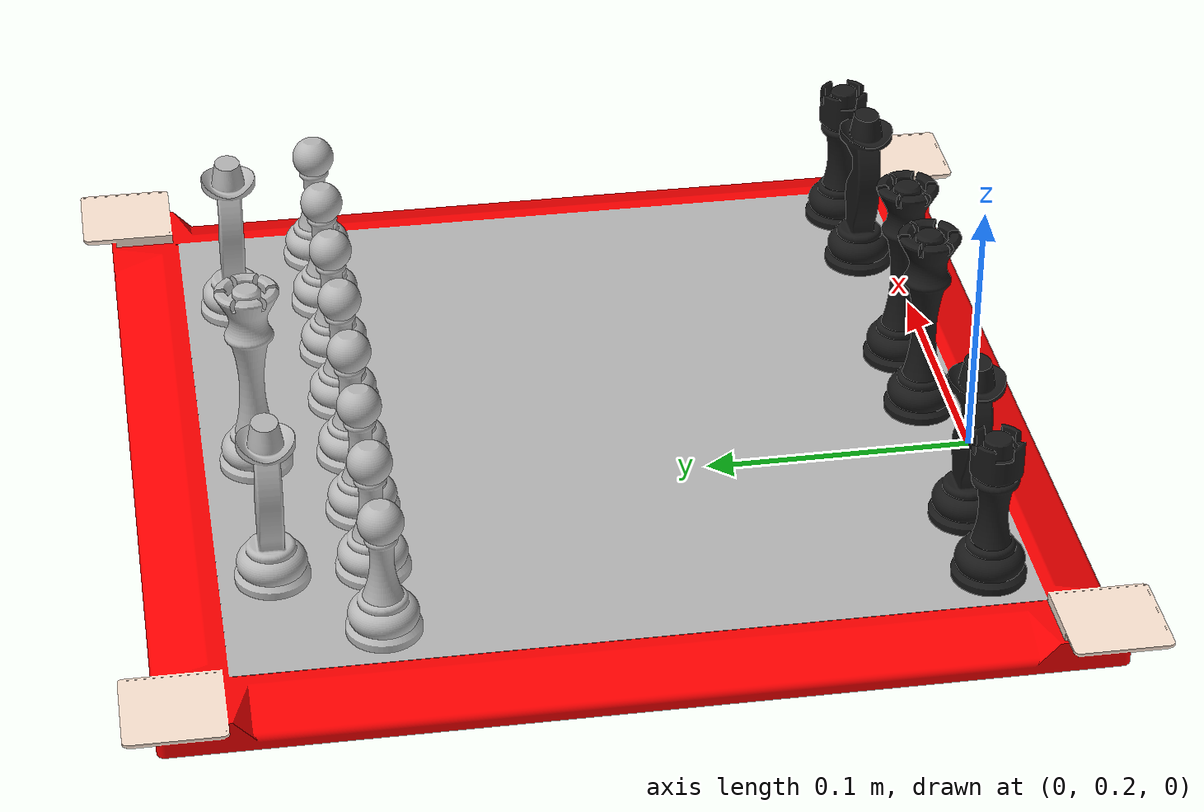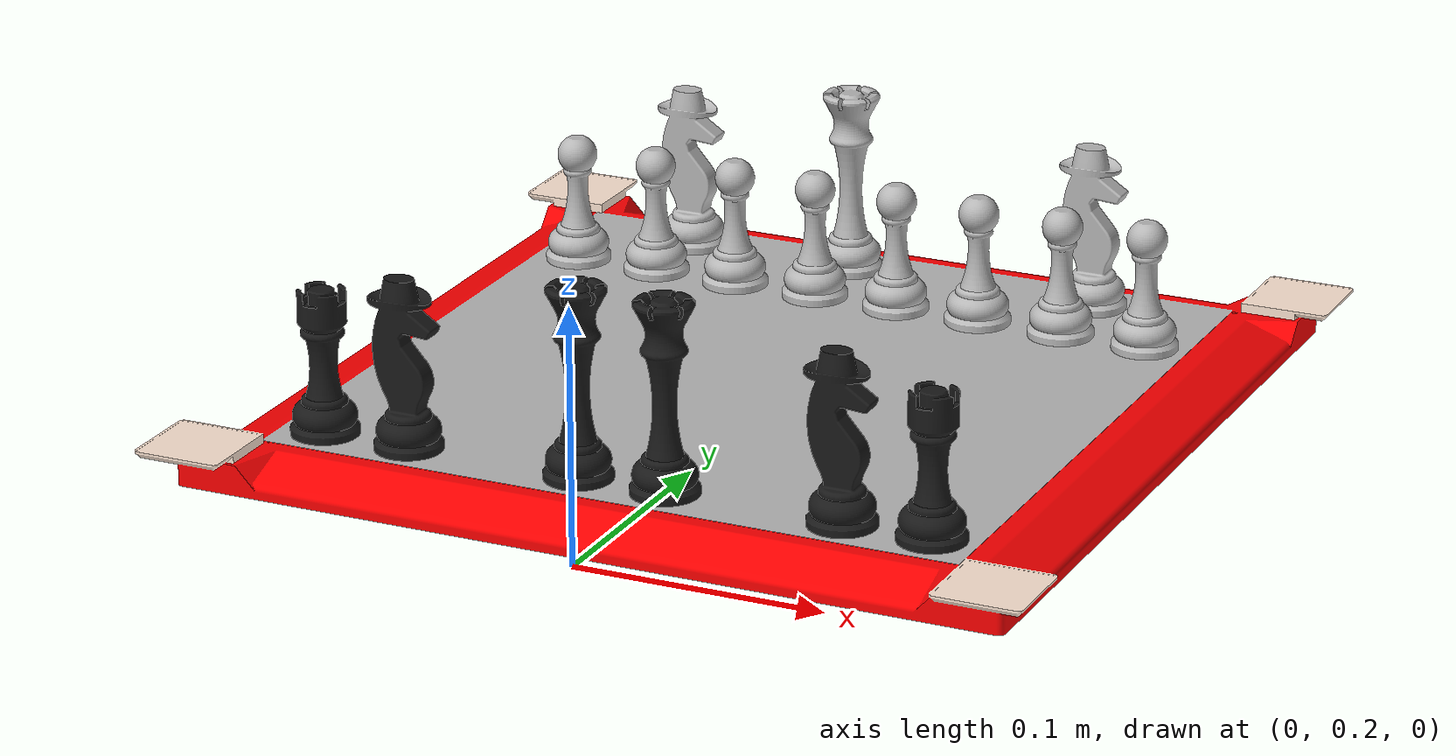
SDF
<sdf version="1.7">
 <world name="default">
  <gravity>0 0 -9.8</gravity>
  <magnetic_field>6e-06 2.3e-05 -4.2e-05</magnetic_field>
  <atmosphere type="adiabatic"/>
  <physics type="ode">
   <max_step_size>0.001</max_step_size>
   <real_time_factor>1</real_time_factor>
   <real_time_update_rate>1000</real_time_update_rate>
  </physics>
  <scene><ambient>0.4 0.4 0.4 1</ambient><background>0.7 0.7 0.7 1</background><shadows>1</shadows></scene>
  <audio><device>default</device></audio>
  <spherical_coordinates>
   <surface_model>EARTH_WGS84</surface_model>
   <latitude_deg>0</latitude_deg>
   <longitude_deg>0</longitude_deg>
   <elevation>0</elevation>
   <heading_deg>0</heading_deg>
  </spherical_coordinates>
  <model name="board">
   <static>1</static>
   <link name="link">
    <visual name="visual"><geometry><mesh><uri>model://board/meshes/board.dae</uri></mesh></geometry></visual>
    <collision name="collision">
     <geometry><mesh><uri>model://board/meshes/board.dae</uri></mesh></geometry>
    </collision>
   </link>
   <pose>-0.011355 0.342107 0.010873 0 -0 0</pose>
  </model>
  <light name="user_point_light_0" type="point">
   <pose>-0.050834 1.0999 1 0 -0 0</pose>
   <diffuse>0.5 0.5 0.5 1</diffuse>
   <specular>0.1 0.1 0.1 1</specular>
   <attenuation>
    <range>20</range>
    <constant>0.5</constant>
    <linear>0.01</linear>
    <quadratic>0.001</quadratic>
   </attenuation>
   <cast_shadows>0</cast_shadows>
   <direction>0 0 -1</direction>
   <spot><inner_angle>0</inner_angle><outer_angle>0</outer_angle><falloff>0</falloff></spot>
  </light>
  <model name="white_pawn_a2">
   <static>0</static>
   <link name="link">
    <inertial>
     <mass>0.05</mass>
     <inertia><ixx>1e-05</ixx><iyy>1e-05</iyy><izz>1e-05</izz><ixy>0</ixy><ixz>0</ixz><iyz>0</iyz></inertia>
    </inertial>
    <collision name="collision">
     <geometry><mesh><uri>model://white_pawn/meshes/white_pawn.dae</uri></mesh></geometry>
     <surface><friction><ode><mu>1</mu><mu2>1</mu2></ode></friction></surface>
    </collision>
    <visual name="visual">
     <geometry><mesh><uri>model://white_pawn/meshes/white_pawn.dae</uri></mesh></geometry>
    </visual>
   </link>
   <plugin name="ros2_objectpose_plugin" filename="libros2_objectpose_plugin.so">
    <ros><namespace>white_pawn_a2</namespace></ros>
   </plugin>
   <pose>0.131602 0.432392 0.024971 0.000155 -8.3e-05 1.2e-05</pose>
  </model>
  <model name="white_pawn_b2">
   <static>0</static>
   <link name="link">
    <inertial>
     <mass>0.05</mass>
     <inertia><ixx>1e-05</ixx><iyy>1e-05</iyy><izz>1e-05</izz><ixy>0</ixy><ixz>0</ixz><iyz>0</iyz></inertia>
    </inertial>
    <collision name="collision">
     <geometry><mesh><uri>model://white_pawn/meshes/white_pawn.dae</uri></mesh></geometry>
     <surface><friction><ode><mu>1</mu><mu2>1</mu2></ode></friction></surface>
    </collision>
    <visual name="visual">
     <geometry><mesh><uri>model://white_pawn/meshes/white_pawn.dae</uri></mesh></geometry>
    </visual>
   </link>
   <plugin name="ros2_objectpose_plugin" filename="libros2_objectpose_plugin.so">
    <ros><namespace>white_pawn_b2</namespace></ros>
   </plugin>
   <pose>0.096602 0.432392 0.02497 -0.000234 -0.000205 1.3e-05</pose>
  </model>
  <model name="white_pawn_c2">
   <static>0</static>
   <link name="link">
    <inertial>
     <mass>0.05</mass>
     <inertia><ixx>1e-05</ixx><iyy>1e-05</iyy><izz>1e-05</izz><ixy>0</ixy><ixz>0</ixz><iyz>0</iyz></inertia>
    </inertial>
    <collision name="collision">
     <geometry><mesh><uri>model://white_pawn/meshes/white_pawn.dae</uri></mesh></geometry>
     <surface><friction><ode><mu>1</mu><mu2>1</mu2></ode></friction></surface>
    </collision>
    <visual name="visual">
     <geometry><mesh><uri>model://white_pawn/meshes/white_pawn.dae</uri></mesh></geometry>
    </visual>
   </link>
   <plugin name="ros2_objectpose_plugin" filename="libros2_objectpose_plugin.so">
    <ros><namespace>white_pawn_c2</namespace></ros>
   </plugin>
   <pose>0.061602 0.432393 0.024972 8.9e-05 -5.4e-05 2.2e-05</pose>
  </model>
  <model name="white_pawn_d2">
   <static>0</static>
   <link name="link">
    <inertial>
     <mass>0.05</mass>
     <inertia><ixx>1e-05</ixx><iyy>1e-05</iyy><izz>1e-05</izz><ixy>0</ixy><ixz>0</ixz><iyz>0</iyz></inertia>
    </inertial>
    <collision name="collision">
     <geometry><mesh><uri>model://white_pawn/meshes/white_pawn.dae</uri></mesh></geometry>
     <surface><friction><ode><mu>1</mu><mu2>1</mu2></ode></friction></surface>
    </collision>
    <visual name="visual">
     <geometry><mesh><uri>model://white_pawn/meshes/white_pawn.dae</uri></mesh></geometry>
    </visual>
   </link>
   <plugin name="ros2_objectpose_plugin" filename="libros2_objectpose_plugin.so">
    <ros><namespace>white_pawn_d2</namespace></ros>
   </plugin>
   <pose>0.026602 0.432393 0.024971 0.000155 -8.3e-05 2e-05</pose>
  </model>
  <model name="white_pawn_e2">
   <static>0</static>
   <link name="link">
    <inertial>
     <mass>0.05</mass>
     <inertia><ixx>1e-05</ixx><iyy>1e-05</iyy><izz>1e-05</izz><ixy>0</ixy><ixz>0</ixz><iyz>0</iyz></inertia>
    </inertial>
    <collision name="collision">
     <geometry><mesh><uri>model://white_pawn/meshes/white_pawn.dae</uri></mesh></geometry>
     <surface><friction><ode><mu>1</mu><mu2>1</mu2></ode></friction></surface>
    </collision>
    <visual name="visual">
     <geometry><mesh><uri>model://white_pawn/meshes/white_pawn.dae</uri></mesh></geometry>
    </visual>
   </link>
   <plugin name="ros2_objectpose_plugin" filename="libros2_objectpose_plugin.so">
    <ros><namespace>white_pawn_e2</namespace></ros>
   </plugin>
   <pose>-0.008398 0.432392 0.024974 0.000126 9.7e-05 1.3e-05</pose>
  </model>
  <model name="white_pawn_f2">
   <static>0</static>
   <link name="link">
    <inertial>
     <mass>0.05</mass>
     <inertia><ixx>1e-05</ixx><iyy>1e-05</iyy><izz>1e-05</izz><ixy>0</ixy><ixz>0</ixz><iyz>0</iyz></inertia>
    </inertial>
    <collision name="collision">
     <geometry><mesh><uri>model://white_pawn/meshes/white_pawn.dae</uri></mesh></geometry>
     <surface><friction><ode><mu>1</mu><mu2>1</mu2></ode></friction></surface>
    </collision>
    <visual name="visual">
     <geometry><mesh><uri>model://white_pawn/meshes/white_pawn.dae</uri></mesh></geometry>
    </visual>
   </link>
   <plugin name="ros2_objectpose_plugin" filename="libros2_objectpose_plugin.so">
    <ros><namespace>white_pawn_f2</namespace></ros>
   </plugin>
   <pose>-0.043398 0.432392 0.024973 -0.000132 2.4e-05 1.8e-05</pose>
  </model>
  <model name="white_pawn_g2">
   <static>0</static>
   <link name="link">
    <inertial>
     <mass>0.05</mass>
     <inertia><ixx>1e-05</ixx><iyy>1e-05</iyy><izz>1e-05</izz><ixy>0</ixy><ixz>0</ixz><iyz>0</iyz></inertia>
    </inertial>
    <collision name="collision">
     <geometry><mesh><uri>model://white_pawn/meshes/white_pawn.dae</uri></mesh></geometry>
     <surface><friction><ode><mu>1</mu><mu2>1</mu2></ode></friction></surface>
    </collision>
    <visual name="visual">
     <geometry><mesh><uri>model://white_pawn/meshes/white_pawn.dae</uri></mesh></geometry>
    </visual>
   </link>
   <plugin name="ros2_objectpose_plugin" filename="libros2_objectpose_plugin.so">
    <ros><namespace>white_pawn_g2</namespace></ros>
   </plugin>
   <pose>-0.078394 0.432405 0.024976 0.000247 -8.7e-05 0.000109</pose>
  </model>
  <model name="white_pawn_h2">
   <static>0</static>
   <link name="link">
    <inertial>
     <mass>0.05</mass>
     <inertia><ixx>1e-05</ixx><iyy>1e-05</iyy><izz>1e-05</izz><ixy>0</ixy><ixz>0</ixz><iyz>0</iyz></inertia>
    </inertial>
    <collision name="collision">
     <geometry><mesh><uri>model://white_pawn/meshes/white_pawn.dae</uri></mesh></geometry>
     <surface><friction><ode><mu>1</mu><mu2>1</mu2></ode></friction></surface>
    </collision>
    <visual name="visual">
     <geometry><mesh><uri>model://white_pawn/meshes/white_pawn.dae</uri></mesh></geometry>
    </visual>
   </link>
   <plugin name="ros2_objectpose_plugin" filename="libros2_objectpose_plugin.so">
    <ros><namespace>white_pawn_h2</namespace></ros>
   </plugin>
   <pose>-0.113397 0.432395 0.024971 0.000155 -8.3e-05 2.2e-05</pose>
  </model>
  <model name="black_rook_a8">
   <static>0</static>
   <link name="link">
    <inertial>
     <mass>0.05</mass>
     <inertia><ixx>1e-05</ixx><iyy>1e-05</iyy><izz>1e-05</izz><ixy>0</ixy><ixz>0</ixz><iyz>0</iyz></inertia>
    </inertial>
    <collision name="collision">
     <geometry><mesh><uri>model://black_rook/meshes/black_rook.dae</uri></mesh></geometry>
     <surface><friction><ode><mu>1</mu><mu2>1</mu2></ode></friction></surface>
    </collision>
    <visual name="visual">
     <geometry><mesh><uri>model://black_rook/meshes/black_rook.dae</uri></mesh></geometry>
    </visual>
   </link>
   <plugin name="ros2_objectpose_plugin" filename="libros2_objectpose_plugin.so">
    <ros><namespace>black_rook_a8</namespace></ros>
   </plugin>
   <pose>0.13163 0.222418 0.024973 -6e-06 -3.1e-05 -0.000285</pose>
  </model>
  <model name="black_rook_h8">
   <static>0</static>
   <link name="link">
    <inertial>
     <mass>0.05</mass>
     <inertia><ixx>1e-05</ixx><iyy>1e-05</iyy><izz>1e-05</izz><ixy>0</ixy><ixz>0</ixz><iyz>0</iyz></inertia>
    </inertial>
    <collision name="collision">
     <geometry><mesh><uri>model://black_rook/meshes/black_rook.dae</uri></mesh></geometry>
     <surface><friction><ode><mu>1</mu><mu2>1</mu2></ode></friction></surface>
    </collision>
    <visual name="visual">
     <geometry><mesh><uri>model://black_rook/meshes/black_rook.dae</uri></mesh></geometry>
    </visual>
   </link>
   <plugin name="ros2_objectpose_plugin" filename="libros2_objectpose_plugin.so">
    <ros><namespace>black_rook_h8</namespace></ros>
   </plugin>
   <pose>-0.113372 0.222419 0.024966 0.000186 -0.000122 -0.000267</pose>
  </model>
  <model name="black_knight_b8">
   <static>0</static>
   <link name="link">
    <inertial>
     <mass>0.05</mass>
     <inertia><ixx>1e-05</ixx><iyy>1e-05</iyy><izz>1e-05</izz><ixy>0</ixy><ixz>0</ixz><iyz>0</iyz></inertia>
    </inertial>
    <collision name="collision">
     <geometry><mesh><uri>model://black_knight/meshes/black_knight.dae</uri></mesh></geometry>
     <surface><friction><ode><mu>1</mu><mu2>1</mu2></ode></friction></surface>
    </collision>
    <visual name="visual">
     <geometry><mesh><uri>model://black_knight/meshes/black_knight.dae</uri></mesh></geometry>
    </visual>
   </link>
   <plugin name="ros2_objectpose_plugin" filename="libros2_objectpose_plugin.so">
    <ros><namespace>black_knight_b8</namespace></ros>
   </plugin>
   <pose>0.096601 0.222401 0.024973 -3.3e-05 -5.7e-05 -1.7e-05</pose>
  </model>
  <model name="black_knight_g8">
   <static>0</static>
   <link name="link">
    <inertial>
     <mass>0.05</mass>
     <inertia><ixx>1e-05</ixx><iyy>1e-05</iyy><izz>1e-05</izz><ixy>0</ixy><ixz>0</ixz><iyz>0</iyz></inertia>
    </inertial>
    <collision name="collision">
     <geometry><mesh><uri>model://black_knight/meshes/black_knight.dae</uri></mesh></geometry>
     <surface><friction><ode><mu>1</mu><mu2>1</mu2></ode></friction></surface>
    </collision>
    <visual name="visual">
     <geometry><mesh><uri>model://black_knight/meshes/black_knight.dae</uri></mesh></geometry>
    </visual>
   </link>
   <plugin name="ros2_objectpose_plugin" filename="libros2_objectpose_plugin.so">
    <ros><namespace>black_knight_g8</namespace></ros>
   </plugin>
   <pose>-0.078399 0.222401 0.024973 -3.2e-05 -6.1e-05 -1.4e-05</pose>
  </model>
  <model name="white_knight_b1">
   <static>0</static>
   <link name="link">
    <inertial>
     <mass>0.05</mass>
     <inertia><ixx>1e-05</ixx><iyy>1e-05</iyy><izz>1e-05</izz><ixy>0</ixy><ixz>0</ixz><iyz>0</iyz></inertia>
    </inertial>
    <collision name="collision">
     <geometry><mesh><uri>model://white_knight/meshes/white_knight.dae</uri></mesh></geometry>
     <surface><friction><ode><mu>1</mu><mu2>1</mu2></ode></friction></surface>
    </collision>
    <visual name="visual">
     <geometry><mesh><uri>model://white_knight/meshes/white_knight.dae</uri></mesh></geometry>
    </visual>
   </link>
   <plugin name="ros2_objectpose_plugin" filename="libros2_objectpose_plugin.so">
    <ros><namespace>white_knight_b1</namespace></ros>
   </plugin>
   <pose>0.096601 0.467401 0.024973 -3.2e-05 -6.1e-05 -1.7e-05</pose>
  </model>
  <model name="white_knight_g1">
   <static>0</static>
   <link name="link">
    <inertial>
     <mass>0.05</mass>
     <inertia><ixx>1e-05</ixx><iyy>1e-05</iyy><izz>1e-05</izz><ixy>0</ixy><ixz>0</ixz><iyz>0</iyz></inertia>
    </inertial>
    <collision name="collision">
     <geometry><mesh><uri>model://white_knight/meshes/white_knight.dae</uri></mesh></geometry>
     <surface><friction><ode><mu>1</mu><mu2>1</mu2></ode></friction></surface>
    </collision>
    <visual name="visual">
     <geometry><mesh><uri>model://white_knight/meshes/white_knight.dae</uri></mesh></geometry>
    </visual>
   </link>
   <plugin name="ros2_objectpose_plugin" filename="libros2_objectpose_plugin.so">
    <ros><namespace>white_knight_g1</namespace></ros>
   </plugin>
   <pose>-0.0784 0.467401 0.024973 6.9e-05 -2.5e-05 -1.7e-05</pose>
  </model>
  <model name="black_queen_d8">
   <static>0</static>
   <link name="link">
    <inertial>
     <mass>0.05</mass>
     <inertia><ixx>1e-05</ixx><iyy>1e-05</iyy><izz>1e-05</izz><ixy>0</ixy><ixz>0</ixz><iyz>0</iyz></inertia>
    </inertial>
    <collision name="collision">
     <geometry><mesh><uri>model://black_queen/meshes/black_queen.dae</uri></mesh></geometry>
     <surface><friction><ode><mu>1</mu><mu2>1</mu2></ode></friction></surface>
    </collision>
    <visual name="visual">
     <geometry><mesh><uri>model://black_queen/meshes/black_queen.dae</uri></mesh></geometry>
    </visual>
   </link>
   <plugin name="ros2_objectpose_plugin" filename="libros2_objectpose_plugin.so">
    <ros><namespace>black_queen_d8</namespace></ros>
   </plugin>
   <pose>0.026619 0.222421 0.024965 0.000395 -0.000684 0.000246</pose>
  </model>
  <model name="black_king_e8">
   <static>0</static>
   <link name="link">
    <inertial>
     <mass>0.05</mass>
     <inertia><ixx>1e-05</ixx><iyy>1e-05</iyy><izz>1e-05</izz><ixy>0</ixy><ixz>0</ixz><iyz>0</iyz></inertia>
    </inertial>
    <collision name="collision">
     <geometry><mesh><uri>model://black_king/meshes/black_king.dae</uri></mesh></geometry>
     <surface><friction><ode><mu>1</mu><mu2>1</mu2></ode></friction></surface>
    </collision>
    <visual name="visual">
     <geometry><mesh><uri>model://black_king/meshes/black_king.dae</uri></mesh></geometry>
    </visual>
   </link>
   <plugin name="ros2_objectpose_plugin" filename="libros2_objectpose_plugin.so">
    <ros><namespace>black_king_e8</namespace></ros>
   </plugin>
   <pose>-0.008361 0.222435 0.024964 0.000533 -0.000669 0.001196</pose>
  </model>
  <model name="white_king_e1">
   <static>0</static>
   <link name="link">
    <inertial>
     <mass>0.05</mass>
     <inertia><ixx>1e-05</ixx><iyy>1e-05</iyy><izz>1e-05</izz><ixy>0</ixy><ixz>0</ixz><iyz>0</iyz></inertia>
    </inertial>
    <collision name="collision">
     <geometry><mesh><uri>model://white_king/meshes/white_king.dae</uri></mesh></geometry>
     <surface><friction><ode><mu>1</mu><mu2>1</mu2></ode></friction></surface>
    </collision>
    <visual name="visual">
     <geometry><mesh><uri>model://white_king/meshes/white_king.dae</uri></mesh></geometry>
    </visual>
   </link>
   <plugin name="ros2_objectpose_plugin" filename="libros2_objectpose_plugin.so">
    <ros><namespace>white_king_e1</namespace></ros>
   </plugin>
   <pose>-0.0084 0.4674 0.024973 -4.6e-05 -5.3e-05 -1e-06</pose>
  </model>
  <plugin name="gazebo_link_attacher" filename="libgazebo_link_attacher.so"/>
 </world>
</sdf>
